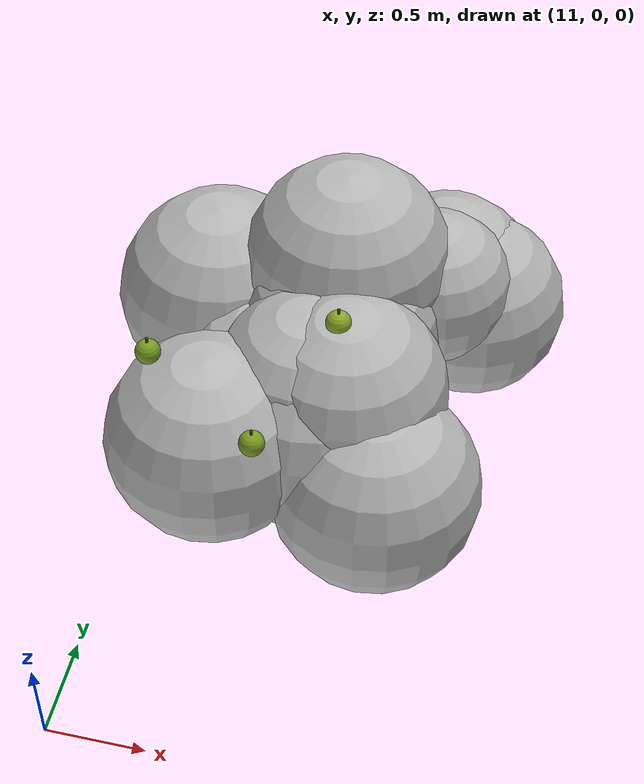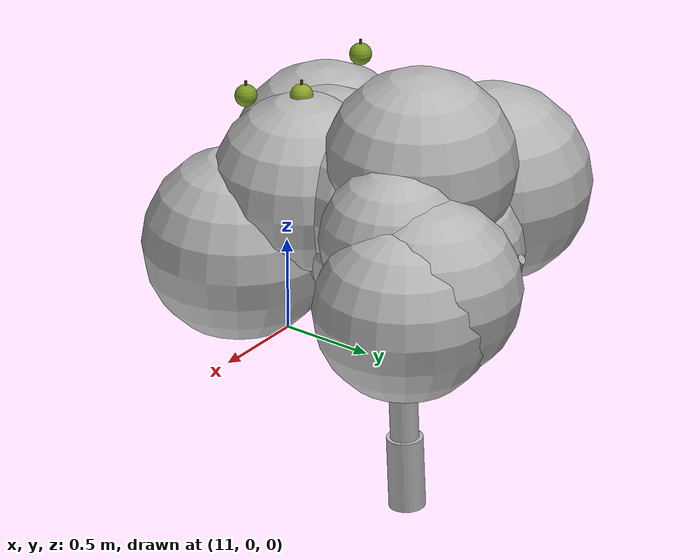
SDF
<sdf version="1.6">
 <world name="default">
  <model name="tree_r3_t13">
   <static>true</static>
   <link name="tree_r3_t13_trunk0">
    <pose>12.1217 1.5660 0.1738 0.0363 0.0120 0</pose>
    <collision name="tree_r3_t13_trunk0_c">
     <geometry><cylinder><radius>0.0900</radius><length>0.3684</length></cylinder></geometry>
    </collision>
    <visual name="tree_r3_t13_trunk0_v">
     <geometry><cylinder><radius>0.0900</radius><length>0.3684</length></cylinder></geometry>
     <material>
      <script>
       <uri>model://orchard/materials/scripts</uri>
       <uri>model://orchard/materials/textures</uri>
       <name>Orchard/Bark</name>
      </script>
     </material>
    </visual>
   </link>
   <link name="tree_r3_t13_trunk1">
    <pose>12.1258 1.5534 0.5213 0.0363 0.0120 0</pose>
    <visual name="tree_r3_t13_trunk1_v">
     <geometry><cylinder><radius>0.0702</radius><length>0.3684</length></cylinder></geometry>
     <material>
      <script>
       <uri>model://orchard/materials/scripts</uri>
       <uri>model://orchard/materials/textures</uri>
       <name>Orchard/Bark</name>
      </script>
     </material>
    </visual>
   </link>
   <link name="tree_r3_t13_trunk2">
    <pose>12.1300 1.5408 0.8688 0.0363 0.0120 0</pose>
    <visual name="tree_r3_t13_trunk2_v">
     <geometry><cylinder><radius>0.0504</radius><length>0.3684</length></cylinder></geometry>
     <material>
      <script>
       <uri>model://orchard/materials/scripts</uri>
       <uri>model://orchard/materials/textures</uri>
       <name>Orchard/Bark</name>
      </script>
     </material>
    </visual>
   </link>
   <link name="tree_r3_t13_br0">
    <pose>12.3983 1.6265 1.2155 0.0000 1.0200 0.3327</pose>
    <visual name="tree_r3_t13_br0_v">
     <geometry><cylinder><radius>0.0265</radius><length>0.6611</length></cylinder></geometry>
     <material>
      <script>
       <uri>model://orchard/materials/scripts</uri>
       <uri>model://orchard/materials/textures</uri>
       <name>Orchard/Bark</name>
      </script>
     </material>
    </visual>
   </link>
   <link name="tree_r3_t13_br1">
    <pose>12.2086 1.7566 1.2401 0.0000 0.8716 1.2388</pose>
    <visual name="tree_r3_t13_br1_v">
     <geometry><cylinder><radius>0.0297</radius><length>0.6139</length></cylinder></geometry>
     <material>
      <script>
       <uri>model://orchard/materials/scripts</uri>
       <uri>model://orchard/materials/textures</uri>
       <name>Orchard/Bark</name>
      </script>
     </material>
    </visual>
   </link>
   <link name="tree_r3_t13_br2">
    <pose>12.1111 1.8692 1.2651 0.0000 0.9848 1.6333</pose>
    <visual name="tree_r3_t13_br2_v">
     <geometry><cylinder><radius>0.0240</radius><length>0.8050</length></cylinder></geometry>
     <material>
      <script>
       <uri>model://orchard/materials/scripts</uri>
       <uri>model://orchard/materials/textures</uri>
       <name>Orchard/Bark</name>
      </script>
     </material>
    </visual>
   </link>
   <link name="tree_r3_t13_br3">
    <pose>11.9137 1.6785 1.2267 0.0000 0.9573 2.5588</pose>
    <visual name="tree_r3_t13_br3_v">
     <geometry><cylinder><radius>0.0297</radius><length>0.6398</length></cylinder></geometry>
     <material>
      <script>
       <uri>model://orchard/materials/scripts</uri>
       <uri>model://orchard/materials/textures</uri>
       <name>Orchard/Bark</name>
      </script>
     </material>
    </visual>
   </link>
   <link name="tree_r3_t13_br4">
    <pose>11.8726 1.3480 1.2796 0.0000 0.9325 3.7650</pose>
    <visual name="tree_r3_t13_br4_v">
     <geometry><cylinder><radius>0.0345</radius><length>0.7958</length></cylinder></geometry>
     <material>
      <script>
       <uri>model://orchard/materials/scripts</uri>
       <uri>model://orchard/materials/textures</uri>
       <name>Orchard/Bark</name>
      </script>
     </material>
    </visual>
   </link>
   <link name="tree_r3_t13_br5">
    <pose>12.0352 1.2760 1.1975 0.0000 1.0592 4.3540</pose>
    <visual name="tree_r3_t13_br5_v">
     <geometry><cylinder><radius>0.0302</radius><length>0.6332</length></cylinder></geometry>
     <material>
      <script>
       <uri>model://orchard/materials/scripts</uri>
       <uri>model://orchard/materials/textures</uri>
       <name>Orchard/Bark</name>
      </script>
     </material>
    </visual>
   </link>
   <link name="tree_r3_t13_br6">
    <pose>12.2244 1.2881 1.2017 0.0000 1.0266 5.0709</pose>
    <visual name="tree_r3_t13_br6_v">
     <geometry><cylinder><radius>0.0310</radius><length>0.6152</length></cylinder></geometry>
     <material>
      <script>
       <uri>model://orchard/materials/scripts</uri>
       <uri>model://orchard/materials/textures</uri>
       <name>Orchard/Bark</name>
      </script>
     </material>
    </visual>
   </link>
   <link name="tree_r3_t13_fol0">
    <pose>12.0423 1.0418 1.5873 0 0 0</pose>
    <visual name="tree_r3_t13_fol0_v">
     <geometry><sphere><radius>0.4191</radius></sphere></geometry>
     <material>
      <script>
       <uri>model://orchard/materials/scripts</uri>
       <uri>model://orchard/materials/textures</uri>
       <name>Orchard/Foliage3</name>
      </script>
     </material>
    </visual>
   </link>
   <link name="tree_r3_t13_fol1">
    <pose>12.0937 1.6226 1.8155 0 0 0</pose>
    <visual name="tree_r3_t13_fol1_v">
     <geometry><sphere><radius>0.4621</radius></sphere></geometry>
     <material>
      <script>
       <uri>model://orchard/materials/scripts</uri>
       <uri>model://orchard/materials/textures</uri>
       <name>Orchard/Foliage0</name>
      </script>
     </material>
    </visual>
   </link>
   <link name="tree_r3_t13_fol2">
    <pose>11.8180 1.2137 1.3658 0 0 0</pose>
    <visual name="tree_r3_t13_fol2_v">
     <geometry><sphere><radius>0.4199</radius></sphere></geometry>
     <material>
      <script>
       <uri>model://orchard/materials/scripts</uri>
       <uri>model://orchard/materials/textures</uri>
       <name>Orchard/Foliage2</name>
      </script>
     </material>
    </visual>
   </link>
   <link name="tree_r3_t13_fol3">
    <pose>12.0950 1.5555 1.3917 0 0 0</pose>
    <visual name="tree_r3_t13_fol3_v">
     <geometry><sphere><radius>0.4842</radius></sphere></geometry>
     <material>
      <script>
       <uri>model://orchard/materials/scripts</uri>
       <uri>model://orchard/materials/textures</uri>
       <name>Orchard/Foliage2</name>
      </script>
     </material>
    </visual>
   </link>
   <link name="tree_r3_t13_fol4">
    <pose>12.1074 1.4134 1.5877 0 0 0</pose>
    <visual name="tree_r3_t13_fol4_v">
     <geometry><sphere><radius>0.4487</radius></sphere></geometry>
     <material>
      <script>
       <uri>model://orchard/materials/scripts</uri>
       <uri>model://orchard/materials/textures</uri>
       <name>Orchard/Foliage3</name>
      </script>
     </material>
    </visual>
   </link>
   <link name="tree_r3_t13_fol5">
    <pose>12.2174 1.0387 1.5894 0 0 0</pose>
    <visual name="tree_r3_t13_fol5_v">
     <geometry><sphere><radius>0.4472</radius></sphere></geometry>
     <material>
      <script>
       <uri>model://orchard/materials/scripts</uri>
       <uri>model://orchard/materials/textures</uri>
       <name>Orchard/Foliage3</name>
      </script>
     </material>
    </visual>
   </link>
   <link name="tree_r3_t13_fol6">
    <pose>11.5069 1.6216 1.4982 0 0 0</pose>
    <visual name="tree_r3_t13_fol6_v">
     <geometry><sphere><radius>0.4837</radius></sphere></geometry>
     <material>
      <script>
       <uri>model://orchard/materials/scripts</uri>
       <uri>model://orchard/materials/textures</uri>
       <name>Orchard/Foliage2</name>
      </script>
     </material>
    </visual>
   </link>
   <link name="tree_r3_t13_fol7">
    <pose>11.6772 0.7601 1.4587 0 0 0</pose>
    <visual name="tree_r3_t13_fol7_v">
     <geometry><sphere><radius>0.4639</radius></sphere></geometry>
     <material>
      <script>
       <uri>model://orchard/materials/scripts</uri>
       <uri>model://orchard/materials/textures</uri>
       <name>Orchard/Foliage2</name>
      </script>
     </material>
    </visual>
   </link>
   <link name="tree_r3_t13_fol8">
    <pose>12.4026 0.7888 1.2848 0 0 0</pose>
    <visual name="tree_r3_t13_fol8_v">
     <geometry><sphere><radius>0.4706</radius></sphere></geometry>
     <material>
      <script>
       <uri>model://orchard/materials/scripts</uri>
       <uri>model://orchard/materials/textures</uri>
       <name>Orchard/Foliage0</name>
      </script>
     </material>
    </visual>
   </link>
   <link name="tree_r3_t13_fol9">
    <pose>11.8743 1.4804 1.4086 0 0 0</pose>
    <visual name="tree_r3_t13_fol9_v">
     <geometry><sphere><radius>0.3651</radius></sphere></geometry>
     <material>
      <script>
       <uri>model://orchard/materials/scripts</uri>
       <uri>model://orchard/materials/textures</uri>
       <name>Orchard/Foliage1</name>
      </script>
     </material>
    </visual>
   </link>
   <link name="tree_r3_t13_fol10">
    <pose>12.0803 0.9802 1.4280 0 0 0</pose>
    <visual name="tree_r3_t13_fol10_v">
     <geometry><sphere><radius>0.4868</radius></sphere></geometry>
     <material>
      <script>
       <uri>model://orchard/materials/scripts</uri>
       <uri>model://orchard/materials/textures</uri>
       <name>Orchard/Foliage0</name>
      </script>
     </material>
    </visual>
   </link>
   <link name="tree_r3_t13_fol11">
    <pose>12.6339 1.9325 1.3666 0 0 0</pose>
    <visual name="tree_r3_t13_fol11_v">
     <geometry><sphere><radius>0.4354</radius></sphere></geometry>
     <material>
      <script>
       <uri>model://orchard/materials/scripts</uri>
       <uri>model://orchard/materials/textures</uri>
       <name>Orchard/Foliage3</name>
      </script>
     </material>
    </visual>
   </link>
   <link name="tree_r3_t13_fol12">
    <pose>12.0340 1.7280 1.3699 0 0 0</pose>
    <visual name="tree_r3_t13_fol12_v">
     <geometry><sphere><radius>0.3789</radius></sphere></geometry>
     <material>
      <script>
       <uri>model://orchard/materials/scripts</uri>
       <uri>model://orchard/materials/textures</uri>
       <name>Orchard/Foliage0</name>
      </script>
     </material>
    </visual>
   </link>
   <link name="tree_r3_t13_fol13">
    <pose>12.4962 1.9757 1.4317 0 0 0</pose>
    <visual name="tree_r3_t13_fol13_v">
     <geometry><sphere><radius>0.4309</radius></sphere></geometry>
     <material>
      <script>
       <uri>model://orchard/materials/scripts</uri>
       <uri>model://orchard/materials/textures</uri>
       <name>Orchard/Foliage1</name>
      </script>
     </material>
    </visual>
   </link>
   <link name="tree_r3_t13_fol14">
    <pose>12.4756 1.7520 1.6100 0 0 0</pose>
    <visual name="tree_r3_t13_fol14_v">
     <geometry><sphere><radius>0.3546</radius></sphere></geometry>
     <material>
      <script>
       <uri>model://orchard/materials/scripts</uri>
       <uri>model://orchard/materials/textures</uri>
       <name>Orchard/Foliage3</name>
      </script>
     </material>
    </visual>
   </link>
   <link name="tree_r3_t13_ap0">
    <pose>12.1861 0.9984 2.0312 0 0 0</pose>
    <visual name="tree_r3_t13_ap0_v">
     <geometry><sphere><radius>0.0550</radius></sphere></geometry>
     <material>
      <ambient>0.220 0.264 0.064 1.00</ambient>
      <diffuse>0.550 0.660 0.160 1.00</diffuse>
      <specular>0.45 0.35 0.32 1</specular>
     </material>
    </visual>
   </link>
   <link name="tree_r3_t13_st0">
    <pose>12.1861 0.9984 2.0835 0 0 0</pose>
    <visual name="tree_r3_t13_st0_v">
     <geometry><cylinder><radius>0.0060</radius><length>0.0500</length></cylinder></geometry>
     <material><ambient>0.128 0.096 0.040 1.00</ambient><diffuse>0.320 0.240 0.100 1.00</diffuse></material>
    </visual>
   </link>
   <link name="tree_r3_t13_ap1">
    <pose>11.4242 0.7797 1.9049 0 0 0</pose>
    <visual name="tree_r3_t13_ap1_v">
     <geometry><sphere><radius>0.0550</radius></sphere></geometry>
     <material>
      <ambient>0.192 0.248 0.052 1.00</ambient>
      <diffuse>0.480 0.620 0.130 1.00</diffuse>
      <specular>0.45 0.35 0.32 1</specular>
     </material>
    </visual>
   </link>
   <link name="tree_r3_t13_st1">
    <pose>11.4242 0.7797 1.9572 0 0 0</pose>
    <visual name="tree_r3_t13_st1_v">
     <geometry><cylinder><radius>0.0060</radius><length>0.0500</length></cylinder></geometry>
     <material><ambient>0.128 0.096 0.040 1.00</ambient><diffuse>0.320 0.240 0.100 1.00</diffuse></material>
    </visual>
   </link>
   <link name="tree_r3_t13_ap2">
    <pose>11.9443 0.4787 1.7949 0 0 0</pose>
    <visual name="tree_r3_t13_ap2_v">
     <geometry><sphere><radius>0.0550</radius></sphere></geometry>
     <material>
      <ambient>0.192 0.248 0.052 1.00</ambient>
      <diffuse>0.480 0.620 0.130 1.00</diffuse>
      <specular>0.45 0.35 0.32 1</specular>
     </material>
    </visual>
   </link>
   <link name="tree_r3_t13_st2">
    <pose>11.9443 0.4787 1.8472 0 0 0</pose>
    <visual name="tree_r3_t13_st2_v">
     <geometry><cylinder><radius>0.0060</radius><length>0.0500</length></cylinder></geometry>
     <material><ambient>0.128 0.096 0.040 1.00</ambient><diffuse>0.320 0.240 0.100 1.00</diffuse></material>
    </visual>
   </link>
  </model>
 </world>
</sdf>
